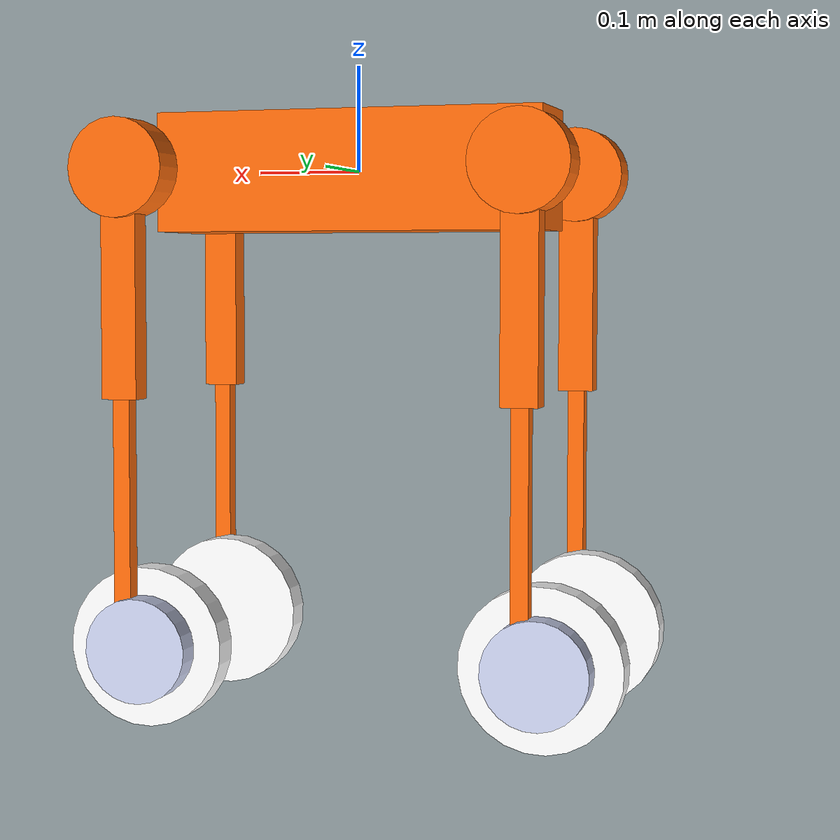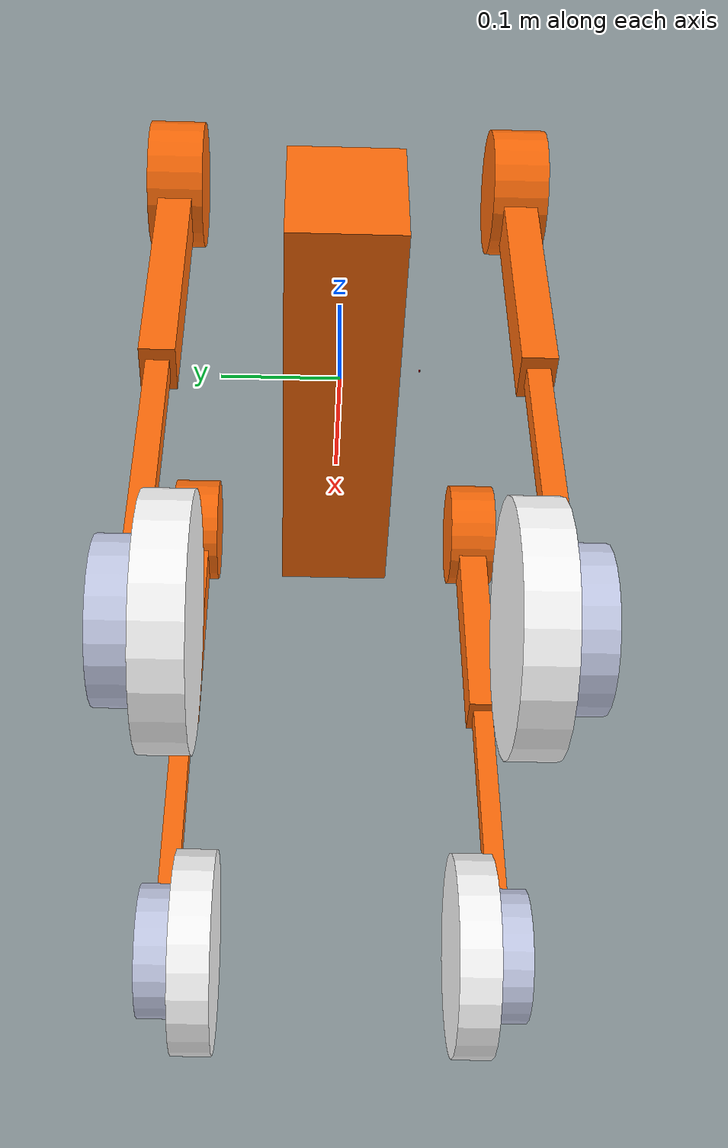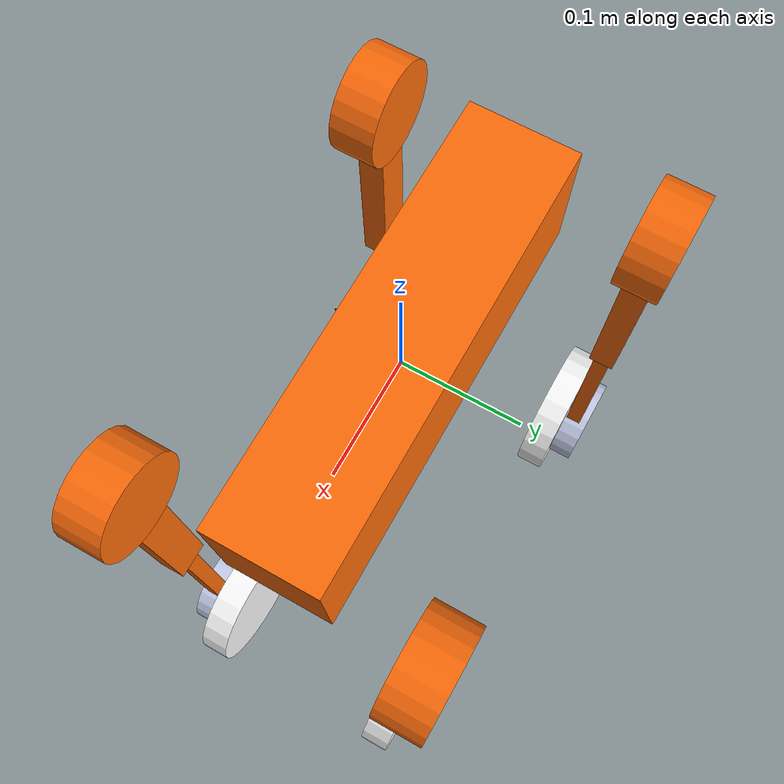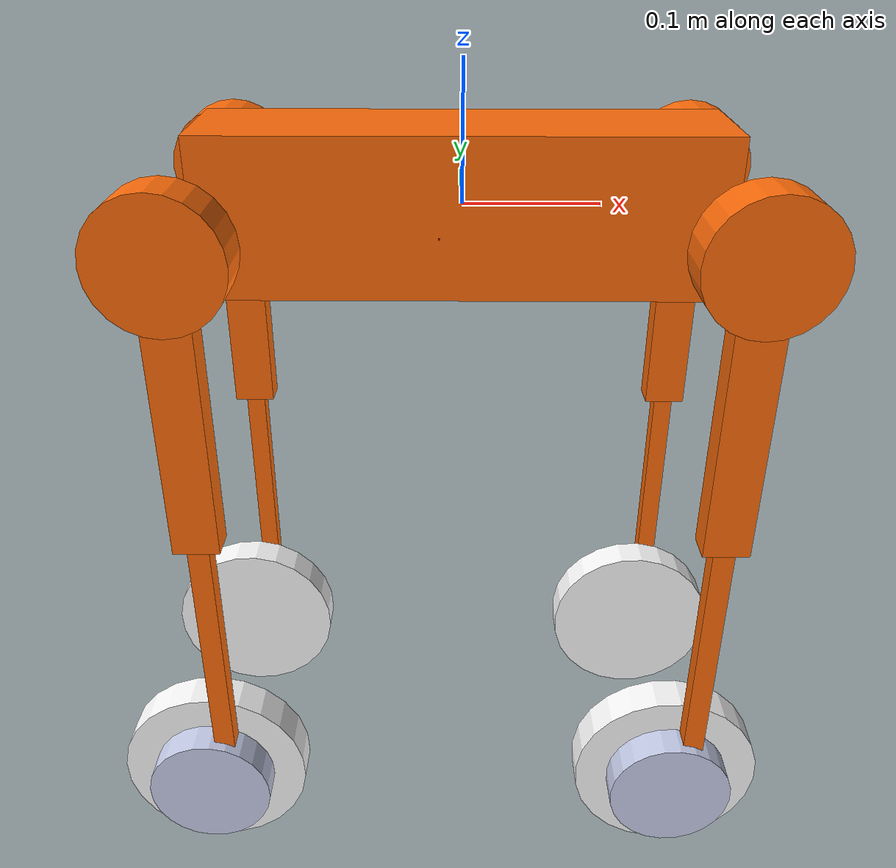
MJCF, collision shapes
<mujoco model="wheeled_go1">
  <compiler angle="radian" meshdir="./"/>
  <statistic meansize="0.171813" extent="0.800099" center="-0.00357368 0.00177765 -0.13567"/>
  <asset>
    <mesh name="trunk" file="trunk.stl"/>
    <mesh name="hip" file="hip.stl"/>
    <mesh name="thigh_mirror" file="thigh_mirror.stl"/>
    <mesh name="calf" file="calf.stl"/>
    <mesh name="wheel_link" file="wheel_link.stl"/>
    <mesh name="wheel" file="wheel.stl"/>
    <mesh name="thigh" file="thigh.stl"/>
  </asset>
  <worldbody>
    <geom type="mesh" contype="0" conaffinity="0" group="1" density="0" rgba="1 0.423529 0.0392157 1" mesh="trunk"/>
    <geom size="0.1881 0.04675 0.057" type="box" rgba="1 0.423529 0.0392157 1"/>
    <geom size="0.0005 0.0005 0.0005" pos="-0.01592 -0.06659 -0.00617" type="box" contype="0" conaffinity="0" group="1" density="0" rgba="0.8 0 0 1"/>
    <geom size="0.0005 0.0005 0.0005" pos="-0.01592 -0.06659 -0.00617" type="box" rgba="0.8 0 0 1"/>
    <body name="FR_hip" pos="0.1881 -0.04675 0">
      <inertial pos="-0.005657 0.008752 -0.000102" quat="0.50601 0.51272 0.497198 0.483596" mass="0.591" diaginertia="0.000619523 0.000400592 0.000333571"/>
      <joint name="1FR_hip_joint" pos="0 0 0" axis="1 0 0" range="-0.863 0.863"/>
      <geom quat="0 1 0 0" type="mesh" contype="0" conaffinity="0" group="1" density="0" rgba="1 0.423529 0.0392157 1" mesh="hip"/>
      <geom size="0.046 0.02" pos="0 -0.08 0" quat="0.707107 0.707107 0 0" type="cylinder" rgba="1 0.423529 0.0392157 1"/>
      <body name="FR_thigh" pos="0 -0.08 0">
        <inertial pos="-0.003342 0.018054 -0.033451" quat="0.638086 -0.0246609 0.075943 0.765814" mass="0.92" diaginertia="0.0045757 0.00444045 0.000641595"/>
        <joint name="1FR_thigh_joint" pos="0 0 0" axis="0 1 0" range="-0.686 4.501"/>
        <geom type="mesh" contype="0" conaffinity="0" group="1" density="0" rgba="1 0.423529 0.0392157 1" mesh="thigh_mirror"/>
        <geom size="0.1065 0.01225 0.017" pos="0 0 -0.1065" quat="0.707107 0 0.707107 0" type="box" rgba="1 0.423529 0.0392157 1"/>
        <body name="FR_calf" pos="0 0 -0.213">
          <inertial pos="-0.0100712 -0.00660545 -0.207824" quat="0.692205 0.0213441 0.0518582 0.719519" mass="0.650175" diaginertia="0.00315024 0.0028886 0.000374769"/>
          <joint name="1FR_calf_joint" pos="0 0 0" axis="0 1 0" range="-2.818 -0.888"/>
          <geom type="mesh" contype="0" conaffinity="0" group="1" density="0" rgba="1 0.423529 0.0392157 1" mesh="calf"/>
          <geom size="0.1065 0.008 0.008" pos="0 0 -0.1065" quat="0.707107 0 0.707107 0" type="box" rgba="1 0.423529 0.0392157 1"/>
          <geom pos="-0.015 -0.03 -0.233" quat="0.00079569 0.0399893 -3.18446e-05 0.9992" type="mesh" contype="0" conaffinity="0" group="1" density="0" rgba="0.79216 0.81961 0.93333 1" mesh="wheel_link"/>
          <geom size="0.049 0.01375" pos="-0.0149562 -0.00250003 -0.233" quat="-0.0277141 0.0288394 0.706518 0.706563" type="cylinder" rgba="0.79216 0.81961 0.93333 1"/>
          <body name="FR_wheel" pos="-0.0149387 0.00849995 -0.233" quat="0.156103 -0.155004 0.68991 0.689659">
            <inertial pos="0 0 0.0142504" quat="0.363025 0.606806 -0.363025 0.606806" mass="0.202347" diaginertia="0.000530092 0.000271419 0.00027137"/>
            <joint name="1FR_wheel_joint" pos="0 0 0" axis="0 0 -1"/>
            <geom type="mesh" contype="0" conaffinity="0" group="1" density="0" rgba="1 1 1 1" mesh="wheel"/>
            <geom size="0.075 0.015" pos="0 0 0.016" quat="0.707107 0 0 0.707107" type="cylinder" rgba="1 1 1 1"/>
          </body>
        </body>
      </body>
    </body>
    <body name="FL_hip" pos="0.1881 0.04675 0">
      <inertial pos="-0.005657 -0.008752 -0.000102" quat="0.483596 0.497198 0.51272 0.50601" mass="0.591" diaginertia="0.000619523 0.000400592 0.000333571"/>
      <joint name="2FL_hip_joint" pos="0 0 0" axis="1 0 0" range="-0.863 0.863"/>
      <geom type="mesh" contype="0" conaffinity="0" group="1" density="0" rgba="1 0.423529 0.0392157 1" mesh="hip"/>
      <geom size="0.046 0.02" pos="0 0.08 0" quat="0.707107 0.707107 0 0" type="cylinder" rgba="1 0.423529 0.0392157 1"/>
      <body name="FL_thigh" pos="0 0.08 0">
        <inertial pos="-0.003342 -0.018054 -0.033451" quat="0.765814 0.075943 -0.0246609 0.638086" mass="0.92" diaginertia="0.0045757 0.00444045 0.000641595"/>
        <joint name="2FL_thigh_joint" pos="0 0 0" axis="0 1 0" range="-0.686 4.501"/>
        <geom type="mesh" contype="0" conaffinity="0" group="1" density="0" rgba="1 0.423529 0.0392157 1" mesh="thigh"/>
        <geom size="0.1065 0.01225 0.017" pos="0 0 -0.1065" quat="0.707107 0 0.707107 0" type="box" rgba="1 0.423529 0.0392157 1"/>
        <body name="FL_calf" pos="0 0 -0.213">
          <inertial pos="-0.0108982 0.00719311 -0.207759" quat="0.716144 0.0477501 0.0248484 0.695874" mass="0.650175" diaginertia="0.00315035 0.00288349 0.000374668"/>
          <joint name="2FL_calf_joint" pos="0 0 0" axis="0 1 0" range="-2.818 -0.888"/>
          <geom type="mesh" contype="0" conaffinity="0" group="1" density="0" rgba="1 0.423529 0.0392157 1" mesh="calf"/>
          <geom size="0.1065 0.008 0.008" pos="0 0 -0.1065" quat="0.707107 0 0.707107 0" type="box" rgba="1 0.423529 0.0392157 1"/>
          <geom pos="-0.015 0.03 -0.233" quat="0.924909 0 0.380188 0" type="mesh" contype="0" conaffinity="0" group="1" density="0" rgba="0.79216 0.81961 0.93333 1" mesh="wheel_link"/>
          <geom size="0.049 0.01375" pos="-0.015 0.0025 -0.233" quat="0.706541 0.706541 0.0282767 -0.0282767" type="cylinder" rgba="0.79216 0.81961 0.93333 1"/>
          <body name="FL_wheel" pos="-0.015 -0.0085 -0.233" quat="0.675146 0.675149 0.21018 -0.21018">
            <inertial pos="0 0 0.0142504" quat="0.363025 0.606806 -0.363025 0.606806" mass="0.202347" diaginertia="0.000530092 0.000271419 0.00027137"/>
            <joint name="2FL_wheel_joint" pos="0 0 0" axis="0 0 -1"/>
            <geom type="mesh" contype="0" conaffinity="0" group="1" density="0" rgba="1 1 1 1" mesh="wheel"/>
            <geom size="0.075 0.015" pos="0 0 0.016" quat="0.707107 0 0 0.707107" type="cylinder" rgba="1 1 1 1"/>
          </body>
        </body>
      </body>
    </body>
    <body name="RR_hip" pos="-0.1881 -0.04675 0">
      <inertial pos="0.005657 0.008752 -0.000102" quat="0.497198 0.483596 0.50601 0.51272" mass="0.591" diaginertia="0.000619523 0.000400592 0.000333571"/>
      <joint name="3RR_hip_joint" pos="0 0 0" axis="1 0 0" range="-0.863 0.863"/>
      <geom quat="0 0 0 -1" type="mesh" contype="0" conaffinity="0" group="1" density="0" rgba="1 0.423529 0.0392157 1" mesh="hip"/>
      <geom size="0.046 0.02" pos="0 -0.08 0" quat="0.707107 0.707107 0 0" type="cylinder" rgba="1 0.423529 0.0392157 1"/>
      <body name="RR_thigh" pos="0 -0.08 0">
        <inertial pos="-0.003342 0.018054 -0.033451" quat="0.638086 -0.0246609 0.075943 0.765814" mass="0.92" diaginertia="0.0045757 0.00444045 0.000641595"/>
        <joint name="3RR_thigh_joint" pos="0 0 0" axis="0 1 0" range="-0.686 4.501"/>
        <geom type="mesh" contype="0" conaffinity="0" group="1" density="0" rgba="1 0.423529 0.0392157 1" mesh="thigh_mirror"/>
        <geom size="0.1065 0.01225 0.017" pos="0 0 -0.1065" quat="0.707107 0 0.707107 0" type="box" rgba="1 0.423529 0.0392157 1"/>
        <body name="RR_calf" pos="0 0 -0.213">
          <inertial pos="-0.0100712 -0.00660545 -0.207824" quat="0.692205 0.0213441 0.0518582 0.719519" mass="0.650175" diaginertia="0.00315024 0.0028886 0.000374769"/>
          <joint name="3RR_calf_joint" pos="0 0 0" axis="0 1 0" range="-2.818 -0.888"/>
          <geom type="mesh" contype="0" conaffinity="0" group="1" density="0" rgba="1 0.423529 0.0392157 1" mesh="calf"/>
          <geom size="0.1065 0.008 0.008" pos="0 0 -0.1065" quat="0.707107 0 0.707107 0" type="box" rgba="1 0.423529 0.0392157 1"/>
          <geom pos="-0.015 -0.03 -0.233" quat="0.00079569 0.0399893 -3.18446e-05 0.9992" type="mesh" contype="0" conaffinity="0" group="1" density="0" rgba="0.79216 0.81961 0.93333 1" mesh="wheel_link"/>
          <geom size="0.049 0.01375" pos="-0.0149562 -0.00250003 -0.233" quat="-0.0277141 0.0288394 0.706518 0.706563" type="cylinder" rgba="0.79216 0.81961 0.93333 1"/>
          <body name="RR_wheel" pos="-0.0149387 0.00849995 -0.233" quat="0.156103 -0.155004 0.68991 0.689659">
            <inertial pos="0 0 0.0142504" quat="0.363025 0.606806 -0.363025 0.606806" mass="0.202347" diaginertia="0.000530092 0.000271419 0.00027137"/>
            <joint name="3RR_wheel_joint" pos="0 0 0" axis="0 0 -1"/>
            <geom type="mesh" contype="0" conaffinity="0" group="1" density="0" rgba="1 1 1 1" mesh="wheel"/>
            <geom size="0.075 0.015" pos="0 0 0.016" quat="0.707107 0 0 0.707107" type="cylinder" rgba="1 1 1 1"/>
          </body>
        </body>
      </body>
    </body>
    <body name="RL_hip" pos="-0.1881 0.04675 0">
      <inertial pos="0.005657 -0.008752 -0.000102" quat="0.51272 0.50601 0.483596 0.497198" mass="0.591" diaginertia="0.000619523 0.000400592 0.000333571"/>
      <joint name="4RL_hip_joint" pos="0 0 0" axis="1 0 0" range="-0.863 0.863"/>
      <geom quat="0 0 1 0" type="mesh" contype="0" conaffinity="0" group="1" density="0" rgba="1 0.423529 0.0392157 1" mesh="hip"/>
      <geom size="0.046 0.02" pos="0 0.08 0" quat="0.707107 0.707107 0 0" type="cylinder" rgba="1 0.423529 0.0392157 1"/>
      <body name="RL_thigh" pos="0 0.08 0">
        <inertial pos="-0.003342 -0.018054 -0.033451" quat="0.765814 0.075943 -0.0246609 0.638086" mass="0.92" diaginertia="0.0045757 0.00444045 0.000641595"/>
        <joint name="4RL_thigh_joint" pos="0 0 0" axis="0 1 0" range="-0.686 4.501"/>
        <geom type="mesh" contype="0" conaffinity="0" group="1" density="0" rgba="1 0.423529 0.0392157 1" mesh="thigh"/>
        <geom size="0.1065 0.01225 0.017" pos="0 0 -0.1065" quat="0.707107 0 0.707107 0" type="box" rgba="1 0.423529 0.0392157 1"/>
        <body name="RL_calf" pos="0 0 -0.213">
          <inertial pos="-0.0108982 0.00719311 -0.207759" quat="0.716144 0.0477501 0.0248484 0.695874" mass="0.650175" diaginertia="0.00315035 0.00288349 0.000374668"/>
          <joint name="4RL_calf_joint" pos="0 0 0" axis="0 1 0" range="-2.818 -0.888"/>
          <geom type="mesh" contype="0" conaffinity="0" group="1" density="0" rgba="1 0.423529 0.0392157 1" mesh="calf"/>
          <geom size="0.1065 0.008 0.008" pos="0 0 -0.1065" quat="0.707107 0 0.707107 0" type="box" rgba="1 0.423529 0.0392157 1"/>
          <geom pos="-0.015 0.03 -0.233" quat="0.924909 0 0.380188 0" type="mesh" contype="0" conaffinity="0" group="1" density="0" rgba="0.79216 0.81961 0.93333 1" mesh="wheel_link"/>
          <geom size="0.049 0.01375" pos="-0.015 0.0025 -0.233" quat="0.706541 0.706541 0.0282767 -0.0282767" type="cylinder" rgba="0.79216 0.81961 0.93333 1"/>
          <body name="RL_wheel" pos="-0.015 -0.0085 -0.233" quat="0.675146 0.675149 0.21018 -0.21018">
            <inertial pos="0 0 0.0142504" quat="0.363025 0.606806 -0.363025 0.606806" mass="0.202347" diaginertia="0.000530092 0.000271419 0.00027137"/>
            <joint name="4RL_wheel_joint" pos="0 0 0" axis="0 0 -1"/>
            <geom type="mesh" contype="0" conaffinity="0" group="1" density="0" rgba="1 1 1 1" mesh="wheel"/>
            <geom size="0.075 0.015" pos="0 0 0.016" quat="0.707107 0 0 0.707107" type="cylinder" rgba="1 1 1 1"/>
          </body>
        </body>
      </body>
    </body>
  </worldbody>
</mujoco>
